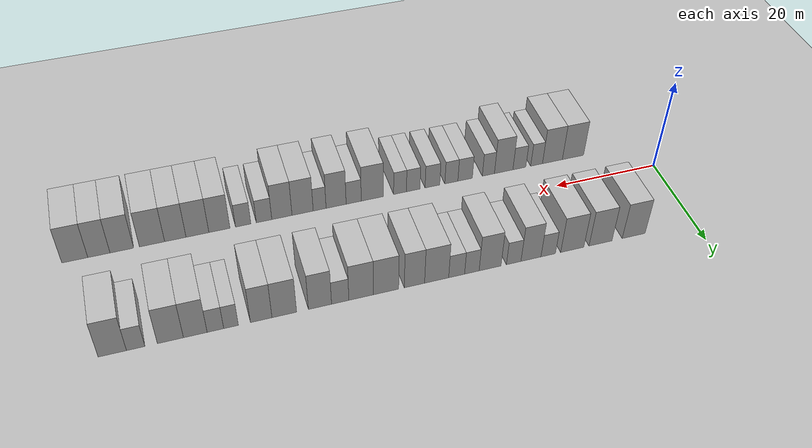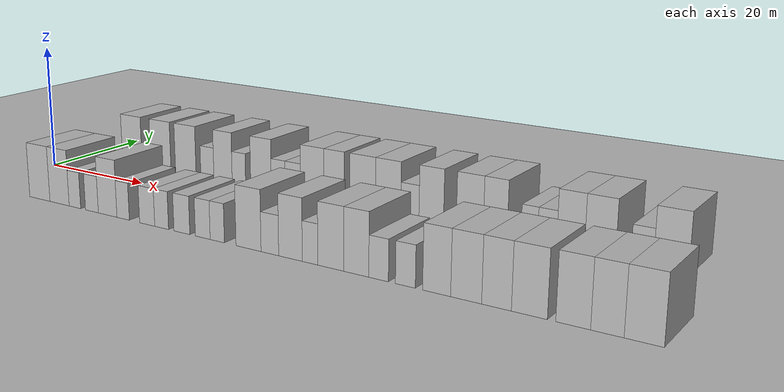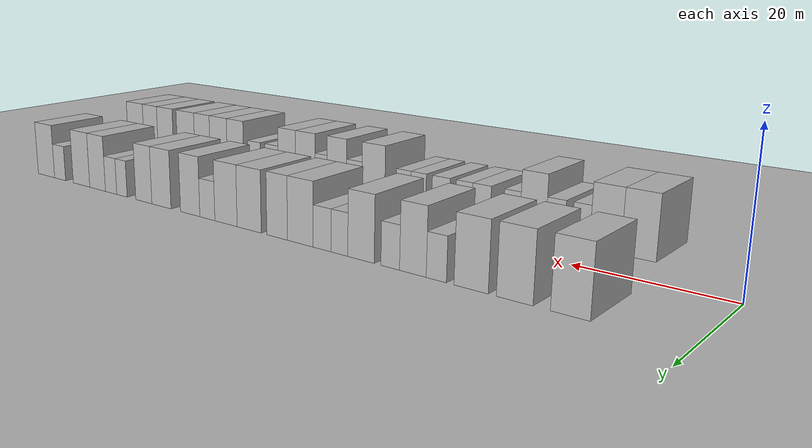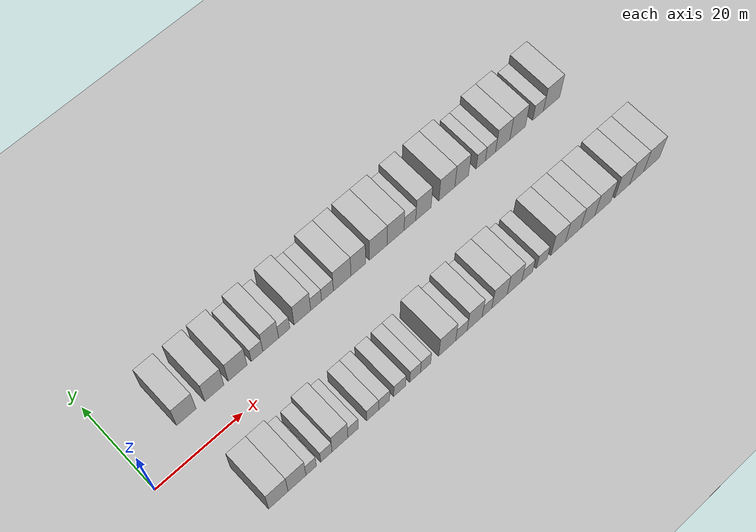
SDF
<sdf version="1.6">
 <world name="default">
  <include><name>ground_plane_1</name><uri>model://HANNAS_ground_plane</uri></include>
  <include>
   <name>ground_plane_2</name>
   <uri>model://HANNAS_ground_plane</uri>
   <pose>100 0 0  0 0 0</pose>
  </include>
  <model name="building_1">
   <static>1</static>
   <pose>12.2322 11.0000 0 0.000000 0.000000 1.570796</pose>
   <link name="link">
    <pose>0 0 4.50 0 0 0</pose>
    <collision name="collision"><geometry><box><size>10.0000 4.4645 9.0000</size></box></geometry></collision>
    <visual name="visual">
     <cast_shadows>0</cast_shadows>
     <geometry><box><size>10.0000 4.4645 9.0000</size></box></geometry>
     <material>
      <script>
       <uri>model://HANNAS_wall/materials/scripts</uri>
       <uri>model://HANNAS_wall/materials/textures</uri>
       <name>vrc/HANNAS_wall</name>
      </script>
     </material>
    </visual>
   </link>
  </model>
  <model name="building_2">
   <static>1</static>
   <pose>18.6756 11.0000 0 0.000000 0.000000 1.570796</pose>
   <link name="link">
    <pose>0 0 4.50 0 0 0</pose>
    <collision name="collision"><geometry><box><size>10.0000 4.4222 9.0000</size></box></geometry></collision>
    <visual name="visual">
     <cast_shadows>0</cast_shadows>
     <geometry><box><size>10.0000 4.4222 9.0000</size></box></geometry>
     <material>
      <script>
       <uri>model://HANNAS_wall/materials/scripts</uri>
       <uri>model://HANNAS_wall/materials/textures</uri>
       <name>vrc/HANNAS_wall</name>
      </script>
     </material>
    </visual>
   </link>
  </model>
  <model name="building_3">
   <static>1</static>
   <pose>24.0874 11.0000 0 0.000000 0.000000 1.570796</pose>
   <link name="link">
    <pose>0 0 4.50 0 0 0</pose>
    <collision name="collision"><geometry><box><size>10.0000 4.4014 9.0000</size></box></geometry></collision>
    <visual name="visual">
     <cast_shadows>0</cast_shadows>
     <geometry><box><size>10.0000 4.4014 9.0000</size></box></geometry>
     <material>
      <script>
       <uri>model://HANNAS_wall/materials/scripts</uri>
       <uri>model://HANNAS_wall/materials/textures</uri>
       <name>vrc/HANNAS_wall</name>
      </script>
     </material>
    </visual>
   </link>
  </model>
  <model name="building_4">
   <static>1</static>
   <pose>28.6527 11.0000 0 0.000000 0.000000 1.570796</pose>
   <link name="link">
    <pose>0 0 3.00 0 0 0</pose>
    <collision name="collision"><geometry><box><size>10.0000 2.7294 6.0000</size></box></geometry></collision>
    <visual name="visual">
     <cast_shadows>0</cast_shadows>
     <geometry><box><size>10.0000 2.7294 6.0000</size></box></geometry>
     <material>
      <script>
       <uri>model://HANNAS_wall/materials/scripts</uri>
       <uri>model://HANNAS_wall/materials/textures</uri>
       <name>vrc/HANNAS_wall</name>
      </script>
     </material>
    </visual>
   </link>
  </model>
  <model name="building_5">
   <static>1</static>
   <pose>31.8860 11.0000 0 0.000000 0.000000 1.570796</pose>
   <link name="link">
    <pose>0 0 4.50 0 0 0</pose>
    <collision name="collision"><geometry><box><size>10.0000 3.7371 9.0000</size></box></geometry></collision>
    <visual name="visual">
     <cast_shadows>0</cast_shadows>
     <geometry><box><size>10.0000 3.7371 9.0000</size></box></geometry>
     <material>
      <script>
       <uri>model://HANNAS_wall/materials/scripts</uri>
       <uri>model://HANNAS_wall/materials/textures</uri>
       <name>vrc/HANNAS_wall</name>
      </script>
     </material>
    </visual>
   </link>
  </model>
  <model name="building_6">
   <static>1</static>
   <pose>35.1066 11.0000 0 0.000000 0.000000 1.570796</pose>
   <link name="link">
    <pose>0 0 3.00 0 0 0</pose>
    <collision name="collision"><geometry><box><size>10.0000 2.7041 6.0000</size></box></geometry></collision>
    <visual name="visual">
     <cast_shadows>0</cast_shadows>
     <geometry><box><size>10.0000 2.7041 6.0000</size></box></geometry>
     <material>
      <script>
       <uri>model://HANNAS_wall/materials/scripts</uri>
       <uri>model://HANNAS_wall/materials/textures</uri>
       <name>vrc/HANNAS_wall</name>
      </script>
     </material>
    </visual>
   </link>
  </model>
  <model name="building_7">
   <static>1</static>
   <pose>39.4706 11.0000 0 0.000000 0.000000 1.570796</pose>
   <link name="link">
    <pose>0 0 4.50 0 0 0</pose>
    <collision name="collision"><geometry><box><size>10.0000 4.0238 9.0000</size></box></geometry></collision>
    <visual name="visual">
     <cast_shadows>0</cast_shadows>
     <geometry><box><size>10.0000 4.0238 9.0000</size></box></geometry>
     <material>
      <script>
       <uri>model://HANNAS_wall/materials/scripts</uri>
       <uri>model://HANNAS_wall/materials/textures</uri>
       <name>vrc/HANNAS_wall</name>
      </script>
     </material>
    </visual>
   </link>
  </model>
  <model name="building_8">
   <static>1</static>
   <pose>42.8065 11.0000 0 0.000000 0.000000 1.570796</pose>
   <link name="link">
    <pose>0 0 3.00 0 0 0</pose>
    <collision name="collision"><geometry><box><size>10.0000 2.6480 6.0000</size></box></geometry></collision>
    <visual name="visual">
     <cast_shadows>0</cast_shadows>
     <geometry><box><size>10.0000 2.6480 6.0000</size></box></geometry>
     <material>
      <script>
       <uri>model://HANNAS_wall/materials/scripts</uri>
       <uri>model://HANNAS_wall/materials/textures</uri>
       <name>vrc/HANNAS_wall</name>
      </script>
     </material>
    </visual>
   </link>
  </model>
  <model name="building_9">
   <static>1</static>
   <pose>45.5730 11.0000 0 0.000000 0.000000 1.570796</pose>
   <link name="link">
    <pose>0 0 3.00 0 0 0</pose>
    <collision name="collision"><geometry><box><size>10.0000 2.8849 6.0000</size></box></geometry></collision>
    <visual name="visual">
     <cast_shadows>0</cast_shadows>
     <geometry><box><size>10.0000 2.8849 6.0000</size></box></geometry>
     <material>
      <script>
       <uri>model://HANNAS_wall/materials/scripts</uri>
       <uri>model://HANNAS_wall/materials/textures</uri>
       <name>vrc/HANNAS_wall</name>
      </script>
     </material>
    </visual>
   </link>
  </model>
  <model name="building_10">
   <static>1</static>
   <pose>49.1811 11.0000 0 0.000000 0.000000 1.570796</pose>
   <link name="link">
    <pose>0 0 4.50 0 0 0</pose>
    <collision name="collision"><geometry><box><size>10.0000 4.3313 9.0000</size></box></geometry></collision>
    <visual name="visual">
     <cast_shadows>0</cast_shadows>
     <geometry><box><size>10.0000 4.3313 9.0000</size></box></geometry>
     <material>
      <script>
       <uri>model://HANNAS_wall/materials/scripts</uri>
       <uri>model://HANNAS_wall/materials/textures</uri>
       <name>vrc/HANNAS_wall</name>
      </script>
     </material>
    </visual>
   </link>
  </model>
  <model name="building_11">
   <static>1</static>
   <pose>53.1576 11.0000 0 0.000000 0.000000 1.570796</pose>
   <link name="link">
    <pose>0 0 4.50 0 0 0</pose>
    <collision name="collision"><geometry><box><size>10.0000 3.6218 9.0000</size></box></geometry></collision>
    <visual name="visual">
     <cast_shadows>0</cast_shadows>
     <geometry><box><size>10.0000 3.6218 9.0000</size></box></geometry>
     <material>
      <script>
       <uri>model://HANNAS_wall/materials/scripts</uri>
       <uri>model://HANNAS_wall/materials/textures</uri>
       <name>vrc/HANNAS_wall</name>
      </script>
     </material>
    </visual>
   </link>
  </model>
  <model name="building_12">
   <static>1</static>
   <pose>58.1856 11.0000 0 0.000000 0.000000 1.570796</pose>
   <link name="link">
    <pose>0 0 4.50 0 0 0</pose>
    <collision name="collision"><geometry><box><size>10.0000 4.4344 9.0000</size></box></geometry></collision>
    <visual name="visual">
     <cast_shadows>0</cast_shadows>
     <geometry><box><size>10.0000 4.4344 9.0000</size></box></geometry>
     <material>
      <script>
       <uri>model://HANNAS_wall/materials/scripts</uri>
       <uri>model://HANNAS_wall/materials/textures</uri>
       <name>vrc/HANNAS_wall</name>
      </script>
     </material>
    </visual>
   </link>
  </model>
  <model name="building_13">
   <static>1</static>
   <pose>62.5479 11.0000 0 0.000000 0.000000 1.570796</pose>
   <link name="link">
    <pose>0 0 4.50 0 0 0</pose>
    <collision name="collision"><geometry><box><size>10.0000 4.2901 9.0000</size></box></geometry></collision>
    <visual name="visual">
     <cast_shadows>0</cast_shadows>
     <geometry><box><size>10.0000 4.2901 9.0000</size></box></geometry>
     <material>
      <script>
       <uri>model://HANNAS_wall/materials/scripts</uri>
       <uri>model://HANNAS_wall/materials/textures</uri>
       <name>vrc/HANNAS_wall</name>
      </script>
     </material>
    </visual>
   </link>
  </model>
  <model name="building_14">
   <static>1</static>
   <pose>66.1876 11.0000 0 0.000000 0.000000 1.570796</pose>
   <link name="link">
    <pose>0 0 3.00 0 0 0</pose>
    <collision name="collision"><geometry><box><size>10.0000 2.9893 6.0000</size></box></geometry></collision>
    <visual name="visual">
     <cast_shadows>0</cast_shadows>
     <geometry><box><size>10.0000 2.9893 6.0000</size></box></geometry>
     <material>
      <script>
       <uri>model://HANNAS_wall/materials/scripts</uri>
       <uri>model://HANNAS_wall/materials/textures</uri>
       <name>vrc/HANNAS_wall</name>
      </script>
     </material>
    </visual>
   </link>
  </model>
  <model name="building_15">
   <static>1</static>
   <pose>69.6649 11.0000 0 0.000000 0.000000 1.570796</pose>
   <link name="link">
    <pose>0 0 4.50 0 0 0</pose>
    <collision name="collision"><geometry><box><size>10.0000 3.9653 9.0000</size></box></geometry></collision>
    <visual name="visual">
     <cast_shadows>0</cast_shadows>
     <geometry><box><size>10.0000 3.9653 9.0000</size></box></geometry>
     <material>
      <script>
       <uri>model://HANNAS_wall/materials/scripts</uri>
       <uri>model://HANNAS_wall/materials/textures</uri>
       <name>vrc/HANNAS_wall</name>
      </script>
     </material>
    </visual>
   </link>
  </model>
  <model name="building_16">
   <static>1</static>
   <pose>75.7314 11.0000 0 0.000000 0.000000 1.570796</pose>
   <link name="link">
    <pose>0 0 4.50 0 0 0</pose>
    <collision name="collision"><geometry><box><size>10.0000 4.1677 9.0000</size></box></geometry></collision>
    <visual name="visual">
     <cast_shadows>0</cast_shadows>
     <geometry><box><size>10.0000 4.1677 9.0000</size></box></geometry>
     <material>
      <script>
       <uri>model://HANNAS_wall/materials/scripts</uri>
       <uri>model://HANNAS_wall/materials/textures</uri>
       <name>vrc/HANNAS_wall</name>
      </script>
     </material>
    </visual>
   </link>
  </model>
  <model name="building_17">
   <static>1</static>
   <pose>79.6209 11.0000 0 0.000000 0.000000 1.570796</pose>
   <link name="link">
    <pose>0 0 4.50 0 0 0</pose>
    <collision name="collision"><geometry><box><size>10.0000 3.6112 9.0000</size></box></geometry></collision>
    <visual name="visual">
     <cast_shadows>0</cast_shadows>
     <geometry><box><size>10.0000 3.6112 9.0000</size></box></geometry>
     <material>
      <script>
       <uri>model://HANNAS_wall/materials/scripts</uri>
       <uri>model://HANNAS_wall/materials/textures</uri>
       <name>vrc/HANNAS_wall</name>
      </script>
     </material>
    </visual>
   </link>
  </model>
  <model name="building_18">
   <static>1</static>
   <pose>84.6441 11.0000 0 0.000000 0.000000 1.570796</pose>
   <link name="link">
    <pose>0 0 3.00 0 0 0</pose>
    <collision name="collision"><geometry><box><size>10.0000 2.4352 6.0000</size></box></geometry></collision>
    <visual name="visual">
     <cast_shadows>0</cast_shadows>
     <geometry><box><size>10.0000 2.4352 6.0000</size></box></geometry>
     <material>
      <script>
       <uri>model://HANNAS_wall/materials/scripts</uri>
       <uri>model://HANNAS_wall/materials/textures</uri>
       <name>vrc/HANNAS_wall</name>
      </script>
     </material>
    </visual>
   </link>
  </model>
  <model name="building_19">
   <static>1</static>
   <pose>87.2198 11.0000 0 0.000000 0.000000 1.570796</pose>
   <link name="link">
    <pose>0 0 3.00 0 0 0</pose>
    <collision name="collision"><geometry><box><size>10.0000 2.7161 6.0000</size></box></geometry></collision>
    <visual name="visual">
     <cast_shadows>0</cast_shadows>
     <geometry><box><size>10.0000 2.7161 6.0000</size></box></geometry>
     <material>
      <script>
       <uri>model://HANNAS_wall/materials/scripts</uri>
       <uri>model://HANNAS_wall/materials/textures</uri>
       <name>vrc/HANNAS_wall</name>
      </script>
     </material>
    </visual>
   </link>
  </model>
  <model name="building_20">
   <static>1</static>
   <pose>90.5099 11.0000 0 0.000000 0.000000 1.570796</pose>
   <link name="link">
    <pose>0 0 4.50 0 0 0</pose>
    <collision name="collision"><geometry><box><size>10.0000 3.8641 9.0000</size></box></geometry></collision>
    <visual name="visual">
     <cast_shadows>0</cast_shadows>
     <geometry><box><size>10.0000 3.8641 9.0000</size></box></geometry>
     <material>
      <script>
       <uri>model://HANNAS_wall/materials/scripts</uri>
       <uri>model://HANNAS_wall/materials/textures</uri>
       <name>vrc/HANNAS_wall</name>
      </script>
     </material>
    </visual>
   </link>
  </model>
  <model name="building_21">
   <static>1</static>
   <pose>94.5507 11.0000 0 0.000000 0.000000 1.570796</pose>
   <link name="link">
    <pose>0 0 4.50 0 0 0</pose>
    <collision name="collision"><geometry><box><size>10.0000 4.2173 9.0000</size></box></geometry></collision>
    <visual name="visual">
     <cast_shadows>0</cast_shadows>
     <geometry><box><size>10.0000 4.2173 9.0000</size></box></geometry>
     <material>
      <script>
       <uri>model://HANNAS_wall/materials/scripts</uri>
       <uri>model://HANNAS_wall/materials/textures</uri>
       <name>vrc/HANNAS_wall</name>
      </script>
     </material>
    </visual>
   </link>
  </model>
  <model name="building_22">
   <static>1</static>
   <pose>100.1274 11.0000 0 0.000000 0.000000 1.570796</pose>
   <link name="link">
    <pose>0 0 3.00 0 0 0</pose>
    <collision name="collision"><geometry><box><size>10.0000 2.9361 6.0000</size></box></geometry></collision>
    <visual name="visual">
     <cast_shadows>0</cast_shadows>
     <geometry><box><size>10.0000 2.9361 6.0000</size></box></geometry>
     <material>
      <script>
       <uri>model://HANNAS_wall/materials/scripts</uri>
       <uri>model://HANNAS_wall/materials/textures</uri>
       <name>vrc/HANNAS_wall</name>
      </script>
     </material>
    </visual>
   </link>
  </model>
  <model name="building_23">
   <static>1</static>
   <pose>103.8333 11.0000 0 0.000000 0.000000 1.570796</pose>
   <link name="link">
    <pose>0 0 4.50 0 0 0</pose>
    <collision name="collision"><geometry><box><size>10.0000 4.4757 9.0000</size></box></geometry></collision>
    <visual name="visual">
     <cast_shadows>0</cast_shadows>
     <geometry><box><size>10.0000 4.4757 9.0000</size></box></geometry>
     <material>
      <script>
       <uri>model://HANNAS_wall/materials/scripts</uri>
       <uri>model://HANNAS_wall/materials/textures</uri>
       <name>vrc/HANNAS_wall</name>
      </script>
     </material>
    </visual>
   </link>
  </model>
  <model name="building_48">
   <static>1</static>
   <pose>14.2133 -11.0000 0 0.000000 0.000000 1.570796</pose>
   <link name="link">
    <pose>0 0 4.50 0 0 0</pose>
    <collision name="collision"><geometry><box><size>10.0000 4.4266 9.0000</size></box></geometry></collision>
    <visual name="visual">
     <cast_shadows>0</cast_shadows>
     <geometry><box><size>10.0000 4.4266 9.0000</size></box></geometry>
     <material>
      <script>
       <uri>model://HANNAS_wall/materials/scripts</uri>
       <uri>model://HANNAS_wall/materials/textures</uri>
       <name>vrc/HANNAS_wall</name>
      </script>
     </material>
    </visual>
   </link>
  </model>
  <model name="building_49">
   <static>1</static>
   <pose>18.4835 -11.0000 0 0.000000 0.000000 1.570796</pose>
   <link name="link">
    <pose>0 0 4.50 0 0 0</pose>
    <collision name="collision"><geometry><box><size>10.0000 4.1138 9.0000</size></box></geometry></collision>
    <visual name="visual">
     <cast_shadows>0</cast_shadows>
     <geometry><box><size>10.0000 4.1138 9.0000</size></box></geometry>
     <material>
      <script>
       <uri>model://HANNAS_wall/materials/scripts</uri>
       <uri>model://HANNAS_wall/materials/textures</uri>
       <name>vrc/HANNAS_wall</name>
      </script>
     </material>
    </visual>
   </link>
  </model>
  <model name="building_50">
   <static>1</static>
   <pose>21.7506 -11.0000 0 0.000000 0.000000 1.570796</pose>
   <link name="link">
    <pose>0 0 3.00 0 0 0</pose>
    <collision name="collision"><geometry><box><size>10.0000 2.4204 6.0000</size></box></geometry></collision>
    <visual name="visual">
     <cast_shadows>0</cast_shadows>
     <geometry><box><size>10.0000 2.4204 6.0000</size></box></geometry>
     <material>
      <script>
       <uri>model://HANNAS_wall/materials/scripts</uri>
       <uri>model://HANNAS_wall/materials/textures</uri>
       <name>vrc/HANNAS_wall</name>
      </script>
     </material>
    </visual>
   </link>
  </model>
  <model name="building_51">
   <static>1</static>
   <pose>25.2767 -11.0000 0 0.000000 0.000000 1.570796</pose>
   <link name="link">
    <pose>0 0 3.00 0 0 0</pose>
    <collision name="collision"><geometry><box><size>10.0000 2.6317 6.0000</size></box></geometry></collision>
    <visual name="visual">
     <cast_shadows>0</cast_shadows>
     <geometry><box><size>10.0000 2.6317 6.0000</size></box></geometry>
     <material>
      <script>
       <uri>model://HANNAS_wall/materials/scripts</uri>
       <uri>model://HANNAS_wall/materials/textures</uri>
       <name>vrc/HANNAS_wall</name>
      </script>
     </material>
    </visual>
   </link>
  </model>
  <model name="building_52">
   <static>1</static>
   <pose>28.4635 -11.0000 0 0.000000 0.000000 1.570796</pose>
   <link name="link">
    <pose>0 0 4.50 0 0 0</pose>
    <collision name="collision"><geometry><box><size>10.0000 3.7420 9.0000</size></box></geometry></collision>
    <visual name="visual">
     <cast_shadows>0</cast_shadows>
     <geometry><box><size>10.0000 3.7420 9.0000</size></box></geometry>
     <material>
      <script>
       <uri>model://HANNAS_wall/materials/scripts</uri>
       <uri>model://HANNAS_wall/materials/textures</uri>
       <name>vrc/HANNAS_wall</name>
      </script>
     </material>
    </visual>
   </link>
  </model>
  <model name="building_53">
   <static>1</static>
   <pose>31.5537 -11.0000 0 0.000000 0.000000 1.570796</pose>
   <link name="link">
    <pose>0 0 3.00 0 0 0</pose>
    <collision name="collision"><geometry><box><size>10.0000 2.4384 6.0000</size></box></geometry></collision>
    <visual name="visual">
     <cast_shadows>0</cast_shadows>
     <geometry><box><size>10.0000 2.4384 6.0000</size></box></geometry>
     <material>
      <script>
       <uri>model://HANNAS_wall/materials/scripts</uri>
       <uri>model://HANNAS_wall/materials/textures</uri>
       <name>vrc/HANNAS_wall</name>
      </script>
     </material>
    </visual>
   </link>
  </model>
  <model name="building_54">
   <static>1</static>
   <pose>36.2151 -11.0000 0 0.000000 0.000000 1.570796</pose>
   <link name="link">
    <pose>0 0 3.00 0 0 0</pose>
    <collision name="collision"><geometry><box><size>10.0000 2.8843 6.0000</size></box></geometry></collision>
    <visual name="visual">
     <cast_shadows>0</cast_shadows>
     <geometry><box><size>10.0000 2.8843 6.0000</size></box></geometry>
     <material>
      <script>
       <uri>model://HANNAS_wall/materials/scripts</uri>
       <uri>model://HANNAS_wall/materials/textures</uri>
       <name>vrc/HANNAS_wall</name>
      </script>
     </material>
    </visual>
   </link>
  </model>
  <model name="building_55">
   <static>1</static>
   <pose>38.9519 -11.0000 0 0.000000 0.000000 1.570796</pose>
   <link name="link">
    <pose>0 0 3.00 0 0 0</pose>
    <collision name="collision"><geometry><box><size>10.0000 2.5895 6.0000</size></box></geometry></collision>
    <visual name="visual">
     <cast_shadows>0</cast_shadows>
     <geometry><box><size>10.0000 2.5895 6.0000</size></box></geometry>
     <material>
      <script>
       <uri>model://HANNAS_wall/materials/scripts</uri>
       <uri>model://HANNAS_wall/materials/textures</uri>
       <name>vrc/HANNAS_wall</name>
      </script>
     </material>
    </visual>
   </link>
  </model>
  <model name="building_56">
   <static>1</static>
   <pose>42.6931 -11.0000 0 0.000000 0.000000 1.570796</pose>
   <link name="link">
    <pose>0 0 3.00 0 0 0</pose>
    <collision name="collision"><geometry><box><size>10.0000 2.8928 6.0000</size></box></geometry></collision>
    <visual name="visual">
     <cast_shadows>0</cast_shadows>
     <geometry><box><size>10.0000 2.8928 6.0000</size></box></geometry>
     <material>
      <script>
       <uri>model://HANNAS_wall/materials/scripts</uri>
       <uri>model://HANNAS_wall/materials/textures</uri>
       <name>vrc/HANNAS_wall</name>
      </script>
     </material>
    </visual>
   </link>
  </model>
  <model name="building_57">
   <static>1</static>
   <pose>46.4579 -11.0000 0 0.000000 0.000000 1.570796</pose>
   <link name="link">
    <pose>0 0 3.00 0 0 0</pose>
    <collision name="collision"><geometry><box><size>10.0000 2.6368 6.0000</size></box></geometry></collision>
    <visual name="visual">
     <cast_shadows>0</cast_shadows>
     <geometry><box><size>10.0000 2.6368 6.0000</size></box></geometry>
     <material>
      <script>
       <uri>model://HANNAS_wall/materials/scripts</uri>
       <uri>model://HANNAS_wall/materials/textures</uri>
       <name>vrc/HANNAS_wall</name>
      </script>
     </material>
    </visual>
   </link>
  </model>
  <model name="building_58">
   <static>1</static>
   <pose>49.0206 -11.0000 0 0.000000 0.000000 1.570796</pose>
   <link name="link">
    <pose>0 0 3.00 0 0 0</pose>
    <collision name="collision"><geometry><box><size>10.0000 2.4887 6.0000</size></box></geometry></collision>
    <visual name="visual">
     <cast_shadows>0</cast_shadows>
     <geometry><box><size>10.0000 2.4887 6.0000</size></box></geometry>
     <material>
      <script>
       <uri>model://HANNAS_wall/materials/scripts</uri>
       <uri>model://HANNAS_wall/materials/textures</uri>
       <name>vrc/HANNAS_wall</name>
      </script>
     </material>
    </visual>
   </link>
  </model>
  <model name="building_59">
   <static>1</static>
   <pose>54.3714 -11.0000 0 0.000000 0.000000 1.570796</pose>
   <link name="link">
    <pose>0 0 4.50 0 0 0</pose>
    <collision name="collision"><geometry><box><size>10.0000 4.2129 9.0000</size></box></geometry></collision>
    <visual name="visual">
     <cast_shadows>0</cast_shadows>
     <geometry><box><size>10.0000 4.2129 9.0000</size></box></geometry>
     <material>
      <script>
       <uri>model://HANNAS_wall/materials/scripts</uri>
       <uri>model://HANNAS_wall/materials/textures</uri>
       <name>vrc/HANNAS_wall</name>
      </script>
     </material>
    </visual>
   </link>
  </model>
  <model name="building_60">
   <static>1</static>
   <pose>57.9203 -11.0000 0 0.000000 0.000000 1.570796</pose>
   <link name="link">
    <pose>0 0 3.00 0 0 0</pose>
    <collision name="collision"><geometry><box><size>10.0000 2.8849 6.0000</size></box></geometry></collision>
    <visual name="visual">
     <cast_shadows>0</cast_shadows>
     <geometry><box><size>10.0000 2.8849 6.0000</size></box></geometry>
     <material>
      <script>
       <uri>model://HANNAS_wall/materials/scripts</uri>
       <uri>model://HANNAS_wall/materials/textures</uri>
       <name>vrc/HANNAS_wall</name>
      </script>
     </material>
    </visual>
   </link>
  </model>
  <model name="building_61">
   <static>1</static>
   <pose>61.2550 -11.0000 0 0.000000 0.000000 1.570796</pose>
   <link name="link">
    <pose>0 0 4.50 0 0 0</pose>
    <collision name="collision"><geometry><box><size>10.0000 3.7845 9.0000</size></box></geometry></collision>
    <visual name="visual">
     <cast_shadows>0</cast_shadows>
     <geometry><box><size>10.0000 3.7845 9.0000</size></box></geometry>
     <material>
      <script>
       <uri>model://HANNAS_wall/materials/scripts</uri>
       <uri>model://HANNAS_wall/materials/textures</uri>
       <name>vrc/HANNAS_wall</name>
      </script>
     </material>
    </visual>
   </link>
  </model>
  <model name="building_62">
   <static>1</static>
   <pose>64.3572 -11.0000 0 0.000000 0.000000 1.570796</pose>
   <link name="link">
    <pose>0 0 3.00 0 0 0</pose>
    <collision name="collision"><geometry><box><size>10.0000 2.4199 6.0000</size></box></geometry></collision>
    <visual name="visual">
     <cast_shadows>0</cast_shadows>
     <geometry><box><size>10.0000 2.4199 6.0000</size></box></geometry>
     <material>
      <script>
       <uri>model://HANNAS_wall/materials/scripts</uri>
       <uri>model://HANNAS_wall/materials/textures</uri>
       <name>vrc/HANNAS_wall</name>
      </script>
     </material>
    </visual>
   </link>
  </model>
  <model name="building_63">
   <static>1</static>
   <pose>67.5437 -11.0000 0 0.000000 0.000000 1.570796</pose>
   <link name="link">
    <pose>0 0 4.50 0 0 0</pose>
    <collision name="collision"><geometry><box><size>10.0000 3.9531 9.0000</size></box></geometry></collision>
    <visual name="visual">
     <cast_shadows>0</cast_shadows>
     <geometry><box><size>10.0000 3.9531 9.0000</size></box></geometry>
     <material>
      <script>
       <uri>model://HANNAS_wall/materials/scripts</uri>
       <uri>model://HANNAS_wall/materials/textures</uri>
       <name>vrc/HANNAS_wall</name>
      </script>
     </material>
    </visual>
   </link>
  </model>
  <model name="building_64">
   <static>1</static>
   <pose>71.3882 -11.0000 0 0.000000 0.000000 1.570796</pose>
   <link name="link">
    <pose>0 0 4.50 0 0 0</pose>
    <collision name="collision"><geometry><box><size>10.0000 3.7360 9.0000</size></box></geometry></collision>
    <visual name="visual">
     <cast_shadows>0</cast_shadows>
     <geometry><box><size>10.0000 3.7360 9.0000</size></box></geometry>
     <material>
      <script>
       <uri>model://HANNAS_wall/materials/scripts</uri>
       <uri>model://HANNAS_wall/materials/textures</uri>
       <name>vrc/HANNAS_wall</name>
      </script>
     </material>
    </visual>
   </link>
  </model>
  <model name="building_65">
   <static>1</static>
   <pose>74.6754 -11.0000 0 0.000000 0.000000 1.570796</pose>
   <link name="link">
    <pose>0 0 3.00 0 0 0</pose>
    <collision name="collision"><geometry><box><size>10.0000 2.8383 6.0000</size></box></geometry></collision>
    <visual name="visual">
     <cast_shadows>0</cast_shadows>
     <geometry><box><size>10.0000 2.8383 6.0000</size></box></geometry>
     <material>
      <script>
       <uri>model://HANNAS_wall/materials/scripts</uri>
       <uri>model://HANNAS_wall/materials/textures</uri>
       <name>vrc/HANNAS_wall</name>
      </script>
     </material>
    </visual>
   </link>
  </model>
  <model name="building_66">
   <static>1</static>
   <pose>78.4961 -11.0000 0 0.000000 0.000000 1.570796</pose>
   <link name="link">
    <pose>0 0 3.00 0 0 0</pose>
    <collision name="collision"><geometry><box><size>10.0000 2.8030 6.0000</size></box></geometry></collision>
    <visual name="visual">
     <cast_shadows>0</cast_shadows>
     <geometry><box><size>10.0000 2.8030 6.0000</size></box></geometry>
     <material>
      <script>
       <uri>model://HANNAS_wall/materials/scripts</uri>
       <uri>model://HANNAS_wall/materials/textures</uri>
       <name>vrc/HANNAS_wall</name>
      </script>
     </material>
    </visual>
   </link>
  </model>
  <model name="building_67">
   <static>1</static>
   <pose>82.8006 -11.0000 0 0.000000 0.000000 1.570796</pose>
   <link name="link">
    <pose>0 0 4.50 0 0 0</pose>
    <collision name="collision"><geometry><box><size>10.0000 3.8061 9.0000</size></box></geometry></collision>
    <visual name="visual">
     <cast_shadows>0</cast_shadows>
     <geometry><box><size>10.0000 3.8061 9.0000</size></box></geometry>
     <material>
      <script>
       <uri>model://HANNAS_wall/materials/scripts</uri>
       <uri>model://HANNAS_wall/materials/textures</uri>
       <name>vrc/HANNAS_wall</name>
      </script>
     </material>
    </visual>
   </link>
  </model>
  <model name="building_68">
   <static>1</static>
   <pose>86.7442 -11.0000 0 0.000000 0.000000 1.570796</pose>
   <link name="link">
    <pose>0 0 4.50 0 0 0</pose>
    <collision name="collision"><geometry><box><size>10.0000 4.0811 9.0000</size></box></geometry></collision>
    <visual name="visual">
     <cast_shadows>0</cast_shadows>
     <geometry><box><size>10.0000 4.0811 9.0000</size></box></geometry>
     <material>
      <script>
       <uri>model://HANNAS_wall/materials/scripts</uri>
       <uri>model://HANNAS_wall/materials/textures</uri>
       <name>vrc/HANNAS_wall</name>
      </script>
     </material>
    </visual>
   </link>
  </model>
  <model name="building_69">
   <static>1</static>
   <pose>90.6813 -11.0000 0 0.000000 0.000000 1.570796</pose>
   <link name="link">
    <pose>0 0 4.50 0 0 0</pose>
    <collision name="collision"><geometry><box><size>10.0000 3.7930 9.0000</size></box></geometry></collision>
    <visual name="visual">
     <cast_shadows>0</cast_shadows>
     <geometry><box><size>10.0000 3.7930 9.0000</size></box></geometry>
     <material>
      <script>
       <uri>model://HANNAS_wall/materials/scripts</uri>
       <uri>model://HANNAS_wall/materials/textures</uri>
       <name>vrc/HANNAS_wall</name>
      </script>
     </material>
    </visual>
   </link>
  </model>
  <model name="building_70">
   <static>1</static>
   <pose>94.7972 -11.0000 0 0.000000 0.000000 1.570796</pose>
   <link name="link">
    <pose>0 0 4.50 0 0 0</pose>
    <collision name="collision"><geometry><box><size>10.0000 4.4388 9.0000</size></box></geometry></collision>
    <visual name="visual">
     <cast_shadows>0</cast_shadows>
     <geometry><box><size>10.0000 4.4388 9.0000</size></box></geometry>
     <material>
      <script>
       <uri>model://HANNAS_wall/materials/scripts</uri>
       <uri>model://HANNAS_wall/materials/textures</uri>
       <name>vrc/HANNAS_wall</name>
      </script>
     </material>
    </visual>
   </link>
  </model>
  <model name="building_71">
   <static>1</static>
   <pose>100.0682 -11.0000 0 0.000000 0.000000 1.570796</pose>
   <link name="link">
    <pose>0 0 4.50 0 0 0</pose>
    <collision name="collision"><geometry><box><size>10.0000 4.1031 9.0000</size></box></geometry></collision>
    <visual name="visual">
     <cast_shadows>0</cast_shadows>
     <geometry><box><size>10.0000 4.1031 9.0000</size></box></geometry>
     <material>
      <script>
       <uri>model://HANNAS_wall/materials/scripts</uri>
       <uri>model://HANNAS_wall/materials/textures</uri>
       <name>vrc/HANNAS_wall</name>
      </script>
     </material>
    </visual>
   </link>
  </model>
  <model name="building_72">
   <static>1</static>
   <pose>104.0295 -11.0000 0 0.000000 0.000000 1.570796</pose>
   <link name="link">
    <pose>0 0 4.50 0 0 0</pose>
    <collision name="collision"><geometry><box><size>10.0000 3.8195 9.0000</size></box></geometry></collision>
    <visual name="visual">
     <cast_shadows>0</cast_shadows>
     <geometry><box><size>10.0000 3.8195 9.0000</size></box></geometry>
     <material>
      <script>
       <uri>model://HANNAS_wall/materials/scripts</uri>
       <uri>model://HANNAS_wall/materials/textures</uri>
       <name>vrc/HANNAS_wall</name>
      </script>
     </material>
    </visual>
   </link>
  </model>
  <model name="building_73">
   <static>1</static>
   <pose>108.1590 -11.0000 0 0.000000 0.000000 1.570796</pose>
   <link name="link">
    <pose>0 0 4.50 0 0 0</pose>
    <collision name="collision"><geometry><box><size>10.0000 4.4397 9.0000</size></box></geometry></collision>
    <visual name="visual">
     <cast_shadows>0</cast_shadows>
     <geometry><box><size>10.0000 4.4397 9.0000</size></box></geometry>
     <material>
      <script>
       <uri>model://HANNAS_wall/materials/scripts</uri>
       <uri>model://HANNAS_wall/materials/textures</uri>
       <name>vrc/HANNAS_wall</name>
      </script>
     </material>
    </visual>
   </link>
  </model>
 </world>
</sdf>
